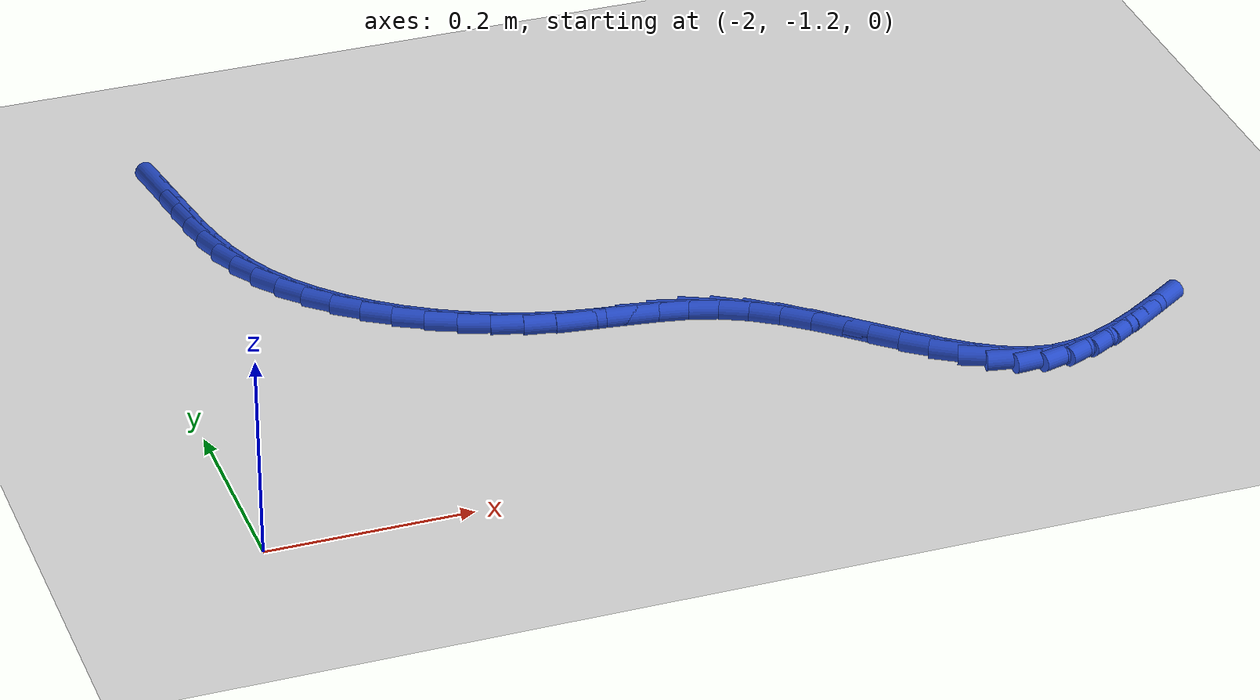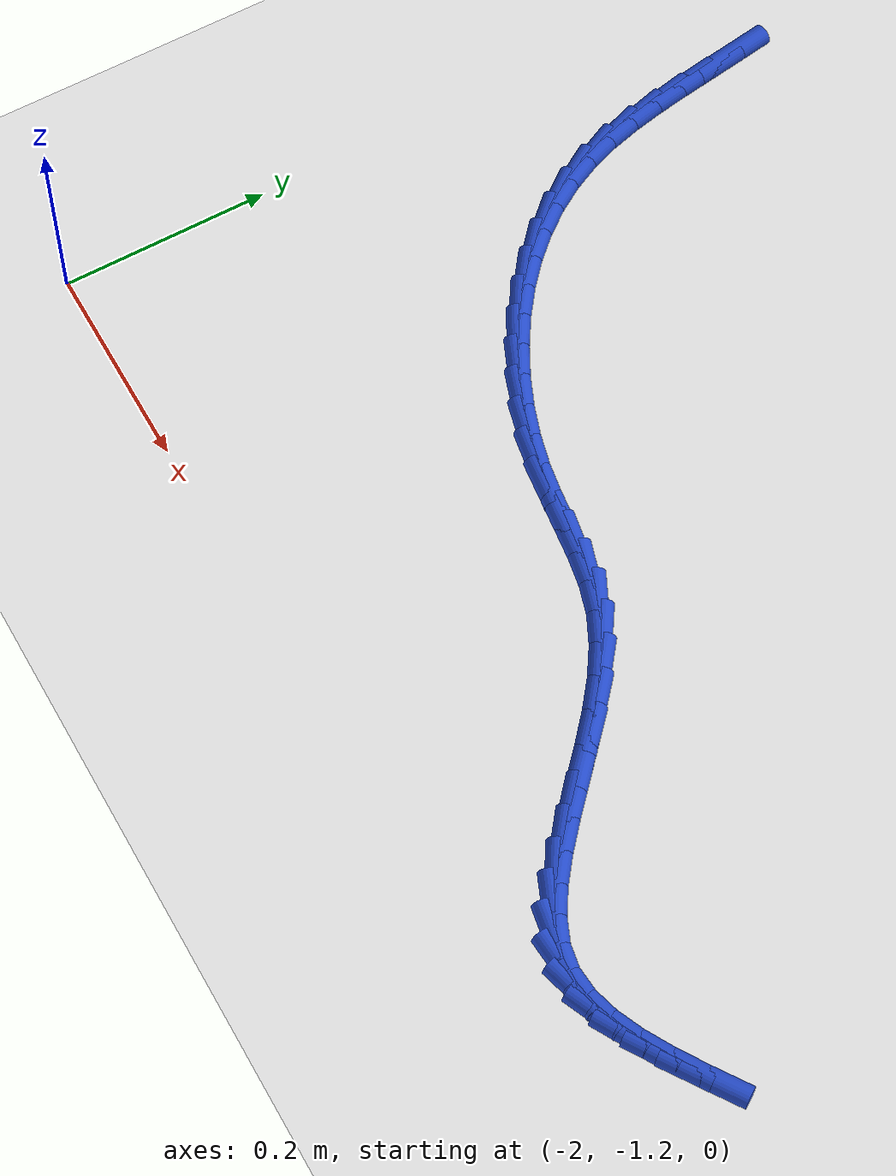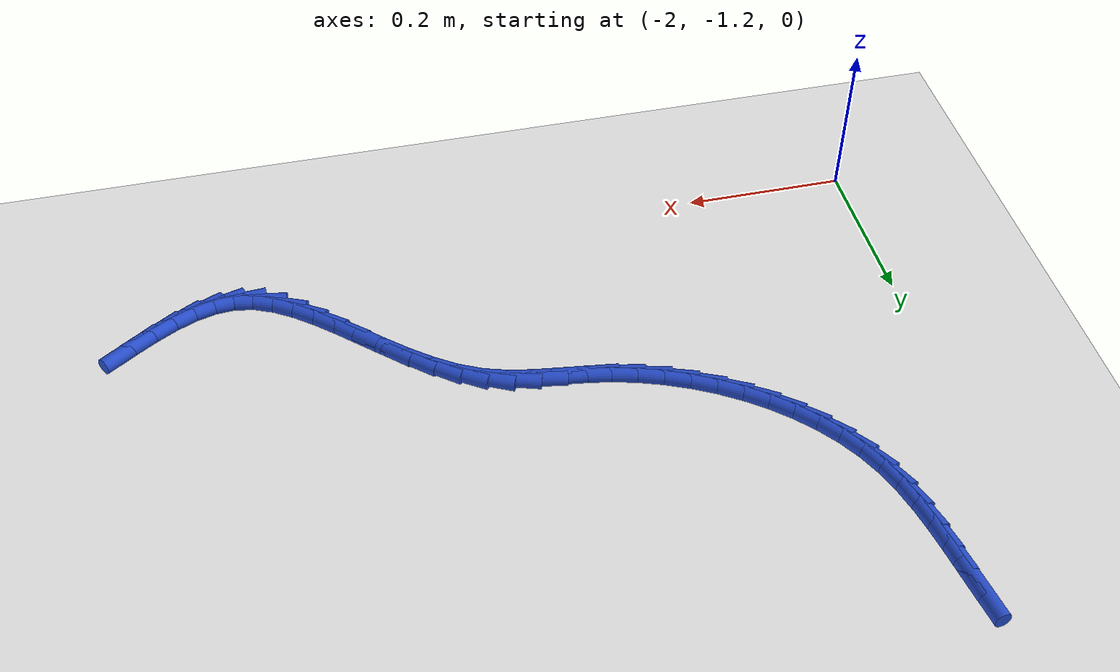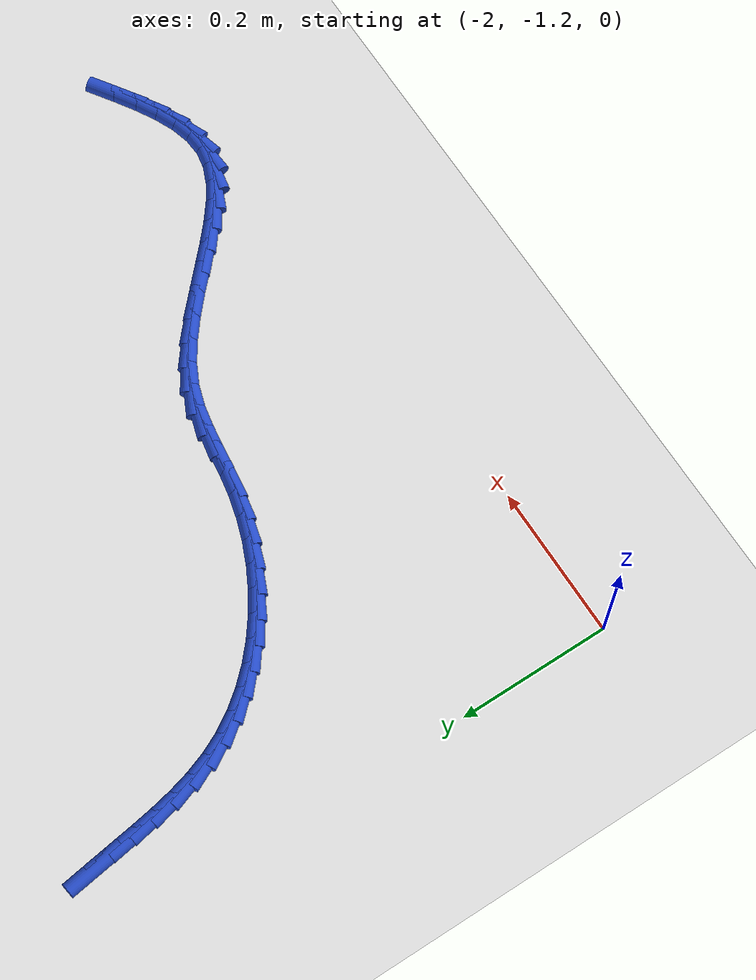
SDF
<sdf version="1.6">
 <world name="default">
  <model name="ground_plane">
   <static>1</static>
   <link name="link">
    <collision name="collision">
     <geometry><plane><normal>0 0 1</normal><size>100 100</size></plane></geometry>
     <surface><friction><ode><mu>100</mu><mu2>50</mu2></ode></friction></surface>
    </collision>
    <visual name="visual">
     <cast_shadows>0</cast_shadows>
     <geometry><plane><normal>0 0 1</normal><size>100 100</size></plane></geometry>
     <material>
      <script><uri>file://media/materials/scripts/gazebo.material</uri><name>Gazebo/WhiteGlow</name></script>
     </material>
    </visual>
   </link>
  </model>
  <model name="line">
   <link name="link_135">
    <pose>-1.9194584922439875 -0.5455059724456901 0.01 0 1.57 -1.4225274823135452</pose>
    <collision name="collision">
     <geometry><cylinder><radius>0.01</radius><length>0.08</length></cylinder></geometry>
    </collision>
    <visual name="visual">
     <material>
      <script><name>Gazebo/Blue</name><uri>file://media/materials/scripts/gazebo.material</uri></script>
     </material>
     <geometry><cylinder><radius>0.01</radius><length>0.08</length></cylinder></geometry>
    </visual>
   </link>
   <link name="link_136">
    <pose>-1.9149237987259649 -0.5758657896107717 0.01 0 1.57 -1.4249068562383207</pose>
    <collision name="collision">
     <geometry><cylinder><radius>0.01</radius><length>0.08</length></cylinder></geometry>
    </collision>
    <visual name="visual">
     <material>
      <script><name>Gazebo/Blue</name><uri>file://media/materials/scripts/gazebo.material</uri></script>
     </material>
     <geometry><cylinder><radius>0.01</radius><length>0.08</length></cylinder></geometry>
    </visual>
   </link>
   <link name="link_137">
    <pose>-1.910452283667774 -0.6062980505481861 0.01 0 1.57 -1.4070603024734711</pose>
    <collision name="collision">
     <geometry><cylinder><radius>0.01</radius><length>0.08</length></cylinder></geometry>
    </collision>
    <visual name="visual">
     <material>
      <script><name>Gazebo/Blue</name><uri>file://media/materials/scripts/gazebo.material</uri></script>
     </material>
     <geometry><cylinder><radius>0.01</radius><length>0.08</length></cylinder></geometry>
    </visual>
   </link>
   <link name="link_138">
    <pose>-1.9054546363380154 -0.6365473855438368 0.01 0 1.57 -1.3685389076432877</pose>
    <collision name="collision">
     <geometry><cylinder><radius>0.01</radius><length>0.08</length></cylinder></geometry>
    </collision>
    <visual name="visual">
     <material>
      <script><name>Gazebo/Blue</name><uri>file://media/materials/scripts/gazebo.material</uri></script>
     </material>
     <geometry><cylinder><radius>0.01</radius><length>0.08</length></cylinder></geometry>
    </visual>
   </link>
   <link name="link_139">
    <pose>-1.8993415460052907 -0.666358424883628 0.01 0 1.57 -1.3084885722145636</pose>
    <collision name="collision">
     <geometry><cylinder><radius>0.01</radius><length>0.08</length></cylinder></geometry>
    </collision>
    <visual name="visual">
     <material>
      <script><name>Gazebo/Blue</name><uri>file://media/materials/scripts/gazebo.material</uri></script>
     </material>
     <geometry><cylinder><radius>0.01</radius><length>0.08</length></cylinder></geometry>
    </visual>
   </link>
   <link name="link_140">
    <pose>-1.8915237019381999 -0.6954757988534637 0.01 0 1.57 -1.2261428115297555</pose>
    <collision name="collision">
     <geometry><cylinder><radius>0.01</radius><length>0.08</length></cylinder></geometry>
    </collision>
    <visual name="visual">
     <material>
      <script><name>Gazebo/Blue</name><uri>file://media/materials/scripts/gazebo.material</uri></script>
     </material>
     <geometry><cylinder><radius>0.01</radius><length>0.08</length></cylinder></geometry>
    </visual>
   </link>
   <link name="link_141">
    <pose>-1.881411793405345 -0.7236441377392467 0.01 0 1.57 -1.1224823062522442</pose>
    <collision name="collision">
     <geometry><cylinder><radius>0.01</radius><length>0.08</length></cylinder></geometry>
    </collision>
    <visual name="visual">
     <material>
      <script><name>Gazebo/Blue</name><uri>file://media/materials/scripts/gazebo.material</uri></script>
     </material>
     <geometry><cylinder><radius>0.01</radius><length>0.08</length></cylinder></geometry>
    </visual>
   </link>
   <link name="link_142">
    <pose>-1.8684409000679147 -0.7506119209447458 0.01 0 1.57 -1.0133803254953453</pose>
    <collision name="collision">
     <geometry><cylinder><radius>0.01</radius><length>0.08</length></cylinder></geometry>
    </collision>
    <visual name="visual">
     <material>
      <script><name>Gazebo/Blue</name><uri>file://media/materials/scripts/gazebo.material</uri></script>
     </material>
     <geometry><cylinder><radius>0.01</radius><length>0.08</length></cylinder></geometry>
    </visual>
   </link>
   <link name="link_143">
    <pose>-1.852491704008158 -0.7761979496708589 0.01 0 1.57 -0.9117022166607699</pose>
    <collision name="collision">
     <geometry><cylinder><radius>0.01</radius><length>0.08</length></cylinder></geometry>
    </collision>
    <visual name="visual">
     <material>
      <script><name>Gazebo/Blue</name><uri>file://media/materials/scripts/gazebo.material</uri></script>
     </material>
     <geometry><cylinder><radius>0.01</radius><length>0.08</length></cylinder></geometry>
    </visual>
   </link>
   <link name="link_144">
    <pose>-1.8338344936175104 -0.8002825100084661 0.01 0 1.57 -0.8171608044820048</pose>
    <collision name="collision">
     <geometry><cylinder><radius>0.01</radius><length>0.08</length></cylinder></geometry>
    </collision>
    <visual name="visual">
     <material>
      <script><name>Gazebo/Blue</name><uri>file://media/materials/scripts/gazebo.material</uri></script>
     </material>
     <geometry><cylinder><radius>0.01</radius><length>0.08</length></cylinder></geometry>
    </visual>
   </link>
   <link name="link_145">
    <pose>-1.812752685107663 -0.8227479597874424 0.01 0 1.57 -0.7287081721360815</pose>
    <collision name="collision">
     <geometry><cylinder><radius>0.01</radius><length>0.08</length></cylinder></geometry>
    </collision>
    <visual name="visual">
     <material>
      <script><name>Gazebo/Blue</name><uri>file://media/materials/scripts/gazebo.material</uri></script>
     </material>
     <geometry><cylinder><radius>0.01</radius><length>0.08</length></cylinder></geometry>
    </visual>
   </link>
   <link name="link_146">
    <pose>-1.7895296946903074 -0.8434766568376655 0.01 0 1.57 -0.6451254901338352</pose>
    <collision name="collision">
     <geometry><cylinder><radius>0.01</radius><length>0.08</length></cylinder></geometry>
    </collision>
    <visual name="visual">
     <material>
      <script><name>Gazebo/Blue</name><uri>file://media/materials/scripts/gazebo.material</uri></script>
     </material>
     <geometry><cylinder><radius>0.01</radius><length>0.08</length></cylinder></geometry>
    </visual>
   </link>
   <link name="link_147">
    <pose>-1.7644489385771354 -0.862350958989012 0.01 0 1.57 -0.5651234159387958</pose>
    <collision name="collision">
     <geometry><cylinder><radius>0.01</radius><length>0.08</length></cylinder></geometry>
    </collision>
    <visual name="visual">
     <material>
      <script><name>Gazebo/Blue</name><uri>file://media/materials/scripts/gazebo.material</uri></script>
     </material>
     <geometry><cylinder><radius>0.01</radius><length>0.08</length></cylinder></geometry>
    </visual>
   </link>
   <link name="link_148">
    <pose>-1.737793832979837 -0.8792532240713585 0.01 0 1.57 -0.4873916898744161</pose>
    <collision name="collision">
     <geometry><cylinder><radius>0.01</radius><length>0.08</length></cylinder></geometry>
    </collision>
    <visual name="visual">
     <material>
      <script><name>Gazebo/Blue</name><uri>file://media/materials/scripts/gazebo.material</uri></script>
     </material>
     <geometry><cylinder><radius>0.01</radius><length>0.08</length></cylinder></geometry>
    </visual>
   </link>
   <link name="link_149">
    <pose>-1.7098477941101053 -0.894065809914581 0.01 0 1.57 -0.4106141211286931</pose>
    <collision name="collision">
     <geometry><cylinder><radius>0.01</radius><length>0.08</length></cylinder></geometry>
    </collision>
    <visual name="visual">
     <material>
      <script><name>Gazebo/Blue</name><uri>file://media/materials/scripts/gazebo.material</uri></script>
     </material>
     <geometry><cylinder><radius>0.01</radius><length>0.08</length></cylinder></geometry>
    </visual>
   </link>
   <link name="link_150">
    <pose>-1.680894238179632 -0.9066710743485564 0.01 0 1.57 -0.3334629124605332</pose>
    <collision name="collision">
     <geometry><cylinder><radius>0.01</radius><length>0.08</length></cylinder></geometry>
    </collision>
    <visual name="visual">
     <material>
      <script><name>Gazebo/Blue</name><uri>file://media/materials/scripts/gazebo.material</uri></script>
     </material>
     <geometry><cylinder><radius>0.01</radius><length>0.08</length></cylinder></geometry>
    </visual>
   </link>
   <link name="link_151">
    <pose>-1.651216581400107 -0.9169513752031615 0.01 0 1.57 -0.2545834555552843</pose>
    <collision name="collision">
     <geometry><cylinder><radius>0.01</radius><length>0.08</length></cylinder></geometry>
    </collision>
    <visual name="visual">
     <material>
      <script><name>Gazebo/Blue</name><uri>file://media/materials/scripts/gazebo.material</uri></script>
     </material>
     <geometry><cylinder><radius>0.01</radius><length>0.08</length></cylinder></geometry>
    </visual>
   </link>
   <link name="link_152">
    <pose>-1.6210982399832232 -0.9247890703082727 0.01 0 1.57 -0.17541396214742874</pose>
    <collision name="collision">
     <geometry><cylinder><radius>0.01</radius><length>0.08</length></cylinder></geometry>
    </collision>
    <visual name="visual">
     <material>
      <script><name>Gazebo/Blue</name><uri>file://media/materials/scripts/gazebo.material</uri></script>
     </material>
     <geometry><cylinder><radius>0.01</radius><length>0.08</length></cylinder></geometry>
    </visual>
   </link>
   <link name="link_153">
    <pose>-1.5908211349161394 -0.9301552497238158 0.01 0 1.57 -0.12720932920796227</pose>
    <collision name="collision">
     <geometry><cylinder><radius>0.01</radius><length>0.08</length></cylinder></geometry>
    </collision>
    <visual name="visual">
     <material>
      <script><name>Gazebo/Blue</name><uri>file://media/materials/scripts/gazebo.material</uri></script>
     </material>
     <geometry><cylinder><radius>0.01</radius><length>0.08</length></cylinder></geometry>
    </visual>
   </link>
   <link name="link_154">
    <pose>-1.560650452892438 -0.9340140792366965 0.01 0 1.57 -0.1313627661269887</pose>
    <collision name="collision">
     <geometry><cylinder><radius>0.01</radius><length>0.08</length></cylinder></geometry>
    </collision>
    <visual name="visual">
     <material>
      <script><name>Gazebo/Blue</name><uri>file://media/materials/scripts/gazebo.material</uri></script>
     </material>
     <geometry><cylinder><radius>0.01</radius><length>0.08</length></cylinder></geometry>
    </visual>
   </link>
   <link name="link_155">
    <pose>-1.5308408840851744 -0.9379526275186867 0.01 0 1.57 -0.19001239509816542</pose>
    <collision name="collision">
     <geometry><cylinder><radius>0.01</radius><length>0.08</length></cylinder></geometry>
    </collision>
    <visual name="visual">
     <material>
      <script><name>Gazebo/Blue</name><uri>file://media/materials/scripts/gazebo.material</uri></script>
     </material>
     <geometry><cylinder><radius>0.01</radius><length>0.08</length></cylinder></geometry>
    </visual>
   </link>
   <link name="link_156">
    <pose>-1.5016469567144906 -0.9435675741348577 0.01 0 1.57 -0.3040697144615097</pose>
    <collision name="collision">
     <geometry><cylinder><radius>0.01</radius><length>0.08</length></cylinder></geometry>
    </collision>
    <visual name="visual">
     <material>
      <script><name>Gazebo/Blue</name><uri>file://media/materials/scripts/gazebo.material</uri></script>
     </material>
     <geometry><cylinder><radius>0.01</radius><length>0.08</length></cylinder></geometry>
    </visual>
   </link>
   <link name="link_157">
    <pose>-1.4733231990005273 -0.9524555986502814 0.01 0 1.57 -0.45594829143726656</pose>
    <collision name="collision">
     <geometry><cylinder><radius>0.01</radius><length>0.08</length></cylinder></geometry>
    </collision>
    <visual name="visual">
     <material>
      <script><name>Gazebo/Blue</name><uri>file://media/materials/scripts/gazebo.material</uri></script>
     </material>
     <geometry><cylinder><radius>0.01</radius><length>0.08</length></cylinder></geometry>
    </visual>
   </link>
   <link name="link_158">
    <pose>-1.44606522321037 -0.965823252663017 0.01 0 1.57 -0.5819599854129094</pose>
    <collision name="collision">
     <geometry><cylinder><radius>0.01</radius><length>0.08</length></cylinder></geometry>
    </collision>
    <visual name="visual">
     <material>
      <script><name>Gazebo/Blue</name><uri>file://media/materials/scripts/gazebo.material</uri></script>
     </material>
     <geometry><cylinder><radius>0.01</radius><length>0.08</length></cylinder></geometry>
    </visual>
   </link>
   <link name="link_159">
    <pose>-1.4198009430598826 -0.9831044491878537 0.01 0 1.57 -0.6696954292973804</pose>
    <collision name="collision">
     <geometry><cylinder><radius>0.01</radius><length>0.08</length></cylinder></geometry>
    </collision>
    <visual name="visual">
     <material>
      <script><name>Gazebo/Blue</name><uri>file://media/materials/scripts/gazebo.material</uri></script>
     </material>
     <geometry><cylinder><radius>0.01</radius><length>0.08</length></cylinder></geometry>
    </visual>
   </link>
   <link name="link_160">
    <pose>-1.394382279362568 -1.0032298936197837 0.01 0 1.57 -0.7249682408039554</pose>
    <collision name="collision">
     <geometry><cylinder><radius>0.01</radius><length>0.08</length></cylinder></geometry>
    </collision>
    <visual name="visual">
     <material>
      <script><name>Gazebo/Blue</name><uri>file://media/materials/scripts/gazebo.material</uri></script>
     </material>
     <geometry><cylinder><radius>0.01</radius><length>0.08</length></cylinder></geometry>
    </visual>
   </link>
   <link name="link_161">
    <pose>-1.3696611478022802 -1.025130257386448 0.01 0 1.57 -0.751938909458437</pose>
    <collision name="collision">
     <geometry><cylinder><radius>0.01</radius><length>0.08</length></cylinder></geometry>
    </collision>
    <visual name="visual">
     <material>
      <script><name>Gazebo/Blue</name><uri>file://media/materials/scripts/gazebo.material</uri></script>
     </material>
     <geometry><cylinder><radius>0.01</radius><length>0.08</length></cylinder></geometry>
    </visual>
   </link>
   <link name="link_162">
    <pose>-1.3454894640628745 -1.0477362119154874 0.01 0 1.57 -0.7521997747758529</pose>
    <collision name="collision">
     <geometry><cylinder><radius>0.01</radius><length>0.08</length></cylinder></geometry>
    </collision>
    <visual name="visual">
     <material>
      <script><name>Gazebo/Blue</name><uri>file://media/materials/scripts/gazebo.material</uri></script>
     </material>
     <geometry><cylinder><radius>0.01</radius><length>0.08</length></cylinder></geometry>
    </visual>
   </link>
   <link name="link_163">
    <pose>-1.3217191438282059 -1.0699784286345404 0.01 0 1.57 -0.7243839067357453</pose>
    <collision name="collision">
     <geometry><cylinder><radius>0.01</radius><length>0.08</length></cylinder></geometry>
    </collision>
    <visual name="visual">
     <material>
      <script><name>Gazebo/Blue</name><uri>file://media/materials/scripts/gazebo.material</uri></script>
     </material>
     <geometry><cylinder><radius>0.01</radius><length>0.08</length></cylinder></geometry>
    </visual>
   </link>
   <link name="link_164">
    <pose>-1.2982021027821298 -1.0907875789712487 0.01 0 1.57 -0.663633881987538</pose>
    <collision name="collision">
     <geometry><cylinder><radius>0.01</radius><length>0.08</length></cylinder></geometry>
    </collision>
    <visual name="visual">
     <material>
      <script><name>Gazebo/Blue</name><uri>file://media/materials/scripts/gazebo.material</uri></script>
     </material>
     <geometry><cylinder><radius>0.01</radius><length>0.08</length></cylinder></geometry>
    </visual>
   </link>
   <link name="link_165">
    <pose>-1.2747902566085008 -1.1090943343532522 0.01 0 1.57 -0.5609205759038034</pose>
    <collision name="collision">
     <geometry><cylinder><radius>0.01</radius><length>0.08</length></cylinder></geometry>
    </collision>
    <visual name="visual">
     <material>
      <script><name>Gazebo/Blue</name><uri>file://media/materials/scripts/gazebo.material</uri></script>
     </material>
     <geometry><cylinder><radius>0.01</radius><length>0.08</length></cylinder></geometry>
    </visual>
   </link>
   <link name="link_166">
    <pose>-1.251335520991173 -1.123829366208191 0.01 0 1.57 -0.40346549958132555</pose>
    <collision name="collision">
     <geometry><cylinder><radius>0.01</radius><length>0.08</length></cylinder></geometry>
    </collision>
    <visual name="visual">
     <material>
      <script><name>Gazebo/Blue</name><uri>file://media/materials/scripts/gazebo.material</uri></script>
     </material>
     <geometry><cylinder><radius>0.01</radius><length>0.08</length></cylinder></geometry>
    </visual>
   </link>
   <link name="link_167">
    <pose>-1.2276898116140023 -1.1339233459637055 0.01 0 1.57 -0.1810930000357257</pose>
    <collision name="collision">
     <geometry><cylinder><radius>0.01</radius><length>0.08</length></cylinder></geometry>
    </collision>
    <visual name="visual">
     <material>
      <script><name>Gazebo/Blue</name><uri>file://media/materials/scripts/gazebo.material</uri></script>
     </material>
     <geometry><cylinder><radius>0.01</radius><length>0.08</length></cylinder></geometry>
    </visual>
   </link>
   <link name="link_168">
    <pose>-1.20370554049966 -1.1383148407389871 0.01 0 1.57 0.06881682043549532</pose>
    <collision name="collision">
     <geometry><cylinder><radius>0.01</radius><length>0.08</length></cylinder></geometry>
    </collision>
    <visual name="visual">
     <material>
      <script><name>Gazebo/Blue</name><uri>file://media/materials/scripts/gazebo.material</uri></script>
     </material>
     <geometry><cylinder><radius>0.01</radius><length>0.08</length></cylinder></geometry>
    </visual>
   </link>
   <link name="link_169">
    <pose>-1.1792784169593304 -1.136631185131707 0.01 0 1.57 0.2709990110409331</pose>
    <collision name="collision">
     <geometry><cylinder><radius>0.01</radius><length>0.08</length></cylinder></geometry>
    </collision>
    <visual name="visual">
     <material>
      <script><name>Gazebo/Blue</name><uri>file://media/materials/scripts/gazebo.material</uri></script>
     </material>
     <geometry><cylinder><radius>0.01</radius><length>0.08</length></cylinder></geometry>
    </visual>
   </link>
   <link name="link_170">
    <pose>-1.1543804631268333 -1.1297136879219396 0.01 0 1.57 0.4150096664673746</pose>
    <collision name="collision">
     <geometry><cylinder><radius>0.01</radius><length>0.08</length></cylinder></geometry>
    </collision>
    <visual name="visual">
     <material>
      <script><name>Gazebo/Blue</name><uri>file://media/materials/scripts/gazebo.material</uri></script>
     </material>
     <geometry><cylinder><radius>0.01</radius><length>0.08</length></cylinder></geometry>
    </visual>
   </link>
   <link name="link_171">
    <pose>-1.1289914730306667 -1.1185272921514595 0.01 0 1.57 0.5100832393171921</pose>
    <collision name="collision">
     <geometry><cylinder><radius>0.01</radius><length>0.08</length></cylinder></geometry>
    </collision>
    <visual name="visual">
     <material>
      <script><name>Gazebo/Blue</name><uri>file://media/materials/scripts/gazebo.material</uri></script>
     </material>
     <geometry><cylinder><radius>0.01</radius><length>0.08</length></cylinder></geometry>
    </visual>
   </link>
   <link name="link_172">
    <pose>-1.1030912406993274 -1.1040369408620405 0.01 0 1.57 0.566977012567112</pose>
    <collision name="collision">
     <geometry><cylinder><radius>0.01</radius><length>0.08</length></cylinder></geometry>
    </collision>
    <visual name="visual">
     <material>
      <script><name>Gazebo/Blue</name><uri>file://media/materials/scripts/gazebo.material</uri></script>
     </material>
     <geometry><cylinder><radius>0.01</radius><length>0.08</length></cylinder></geometry>
    </visual>
   </link>
   <link name="link_173">
    <pose>-1.0766595601613105 -1.0872075770954555 0.01 0 1.57 0.5934869328201672</pose>
    <collision name="collision">
     <geometry><cylinder><radius>0.01</radius><length>0.08</length></cylinder></geometry>
    </collision>
    <visual name="visual">
     <material>
      <script><name>Gazebo/Blue</name><uri>file://media/materials/scripts/gazebo.material</uri></script>
     </material>
     <geometry><cylinder><radius>0.01</radius><length>0.08</length></cylinder></geometry>
    </visual>
   </link>
  </model>
 </world>
</sdf>
